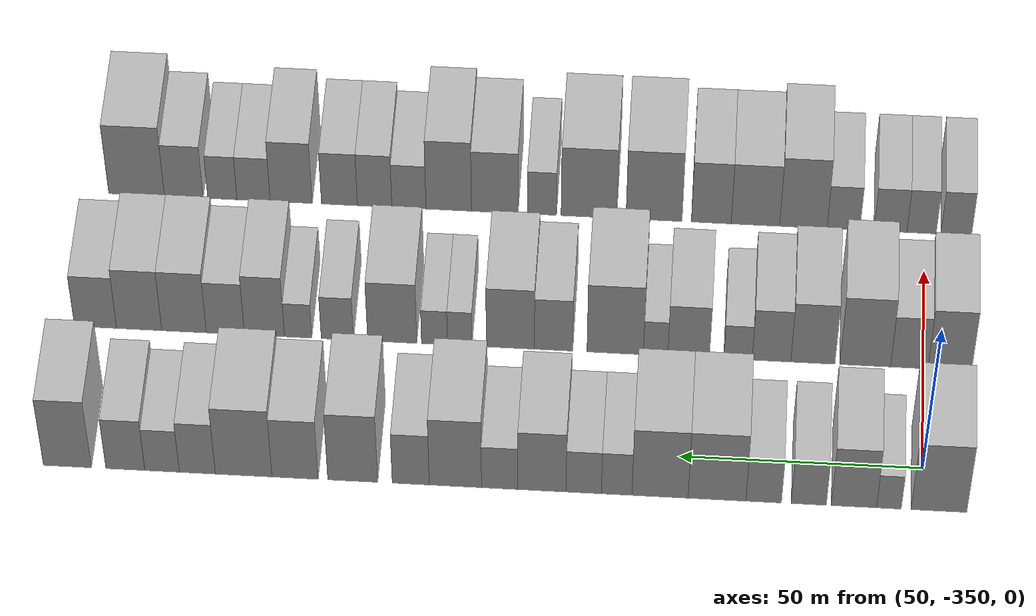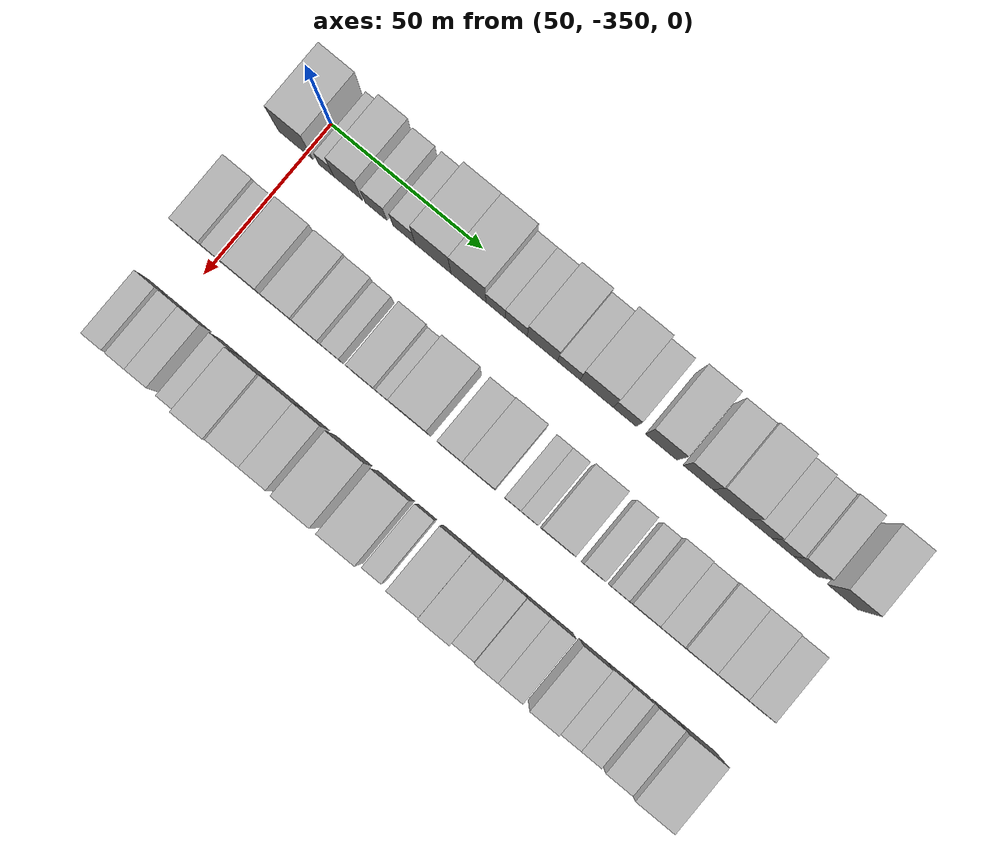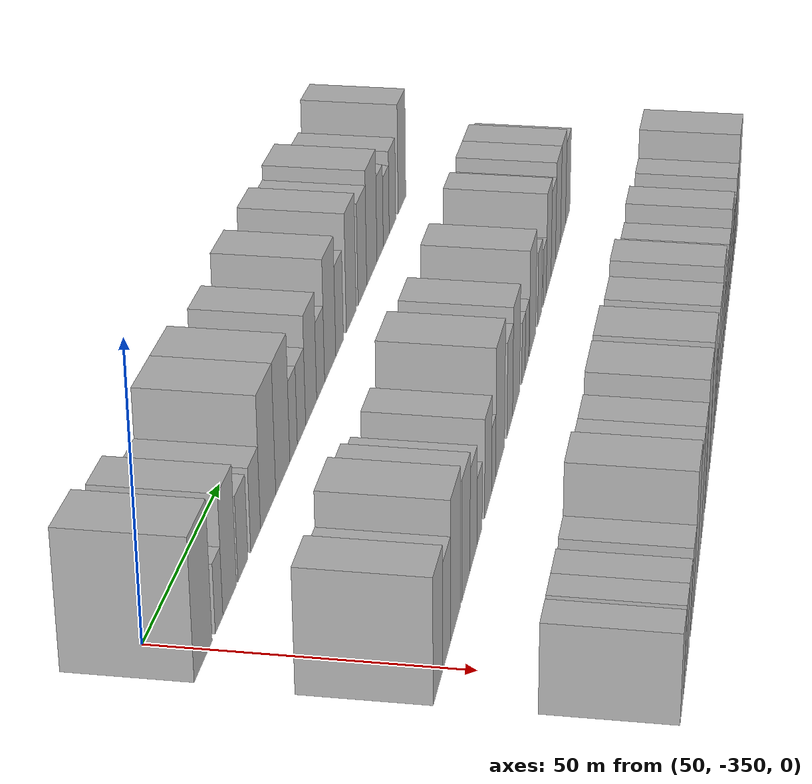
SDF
<sdf version="1.6">
 <world name="default">
  <model name="building_1">
   <static>1</static>
   <pose>50.0000 -353.3251 0 0.000000 0.000000 0.000000</pose>
   <link name="link">
    <pose>0 0 12.00 0 0 0</pose>
    <collision name="collision"><geometry><box><size>20.0000 11.3498 24.0000</size></box></geometry></collision>
    <visual name="visual">
     <cast_shadows>0</cast_shadows>
     <geometry><box><size>20.0000 11.3498 24.0000</size></box></geometry>
     <material>
      <script>
       <uri>model://HANNAS_wall/materials/scripts</uri>
       <uri>model://HANNAS_wall/materials/textures</uri>
       <name>vrc/HANNAS_wall</name>
      </script>
     </material>
    </visual>
   </link>
  </model>
  <model name="building_2">
   <static>1</static>
   <pose>50.0000 -343.1335 0 0.000000 0.000000 0.000000</pose>
   <link name="link">
    <pose>0 0 6.00 0 0 0</pose>
    <collision name="collision"><geometry><box><size>20.0000 5.0335 12.0000</size></box></geometry></collision>
    <visual name="visual">
     <cast_shadows>0</cast_shadows>
     <geometry><box><size>20.0000 5.0335 12.0000</size></box></geometry>
     <material>
      <script>
       <uri>model://HANNAS_wall/materials/scripts</uri>
       <uri>model://HANNAS_wall/materials/textures</uri>
       <name>vrc/HANNAS_wall</name>
      </script>
     </material>
    </visual>
   </link>
  </model>
  <model name="building_3">
   <static>1</static>
   <pose>50.0000 -335.9942 0 0.000000 0.000000 0.000000</pose>
   <link name="link">
    <pose>0 0 10.50 0 0 0</pose>
    <collision name="collision"><geometry><box><size>20.0000 9.2450 21.0000</size></box></geometry></collision>
    <visual name="visual">
     <cast_shadows>0</cast_shadows>
     <geometry><box><size>20.0000 9.2450 21.0000</size></box></geometry>
     <material>
      <script>
       <uri>model://HANNAS_wall/materials/scripts</uri>
       <uri>model://HANNAS_wall/materials/textures</uri>
       <name>vrc/HANNAS_wall</name>
      </script>
     </material>
    </visual>
   </link>
  </model>
  <model name="building_4">
   <static>1</static>
   <pose>50.0000 -326.7886 0 0.000000 0.000000 0.000000</pose>
   <link name="link">
    <pose>0 0 7.50 0 0 0</pose>
    <collision name="collision"><geometry><box><size>20.0000 7.1661 15.0000</size></box></geometry></collision>
    <visual name="visual">
     <cast_shadows>0</cast_shadows>
     <geometry><box><size>20.0000 7.1661 15.0000</size></box></geometry>
     <material>
      <script>
       <uri>model://HANNAS_wall/materials/scripts</uri>
       <uri>model://HANNAS_wall/materials/textures</uri>
       <name>vrc/HANNAS_wall</name>
      </script>
     </material>
    </visual>
   </link>
  </model>
  <model name="building_5">
   <static>1</static>
   <pose>50.0000 -317.5705 0 0.000000 0.000000 0.000000</pose>
   <link name="link">
    <pose>0 0 7.50 0 0 0</pose>
    <collision name="collision"><geometry><box><size>20.0000 7.2703 15.0000</size></box></geometry></collision>
    <visual name="visual">
     <cast_shadows>0</cast_shadows>
     <geometry><box><size>20.0000 7.2703 15.0000</size></box></geometry>
     <material>
      <script>
       <uri>model://HANNAS_wall/materials/scripts</uri>
       <uri>model://HANNAS_wall/materials/textures</uri>
       <name>vrc/HANNAS_wall</name>
      </script>
     </material>
    </visual>
   </link>
  </model>
  <model name="building_6">
   <static>1</static>
   <pose>50.0000 -308.0313 0 0.000000 0.000000 0.000000</pose>
   <link name="link">
    <pose>0 0 12.00 0 0 0</pose>
    <collision name="collision"><geometry><box><size>20.0000 11.8082 24.0000</size></box></geometry></collision>
    <visual name="visual">
     <cast_shadows>0</cast_shadows>
     <geometry><box><size>20.0000 11.8082 24.0000</size></box></geometry>
     <material>
      <script>
       <uri>model://HANNAS_wall/materials/scripts</uri>
       <uri>model://HANNAS_wall/materials/textures</uri>
       <name>vrc/HANNAS_wall</name>
      </script>
     </material>
    </visual>
   </link>
  </model>
  <model name="building_7">
   <static>1</static>
   <pose>50.0000 -296.3901 0 0.000000 0.000000 0.000000</pose>
   <link name="link">
    <pose>0 0 12.00 0 0 0</pose>
    <collision name="collision"><geometry><box><size>20.0000 11.4741 24.0000</size></box></geometry></collision>
    <visual name="visual">
     <cast_shadows>0</cast_shadows>
     <geometry><box><size>20.0000 11.4741 24.0000</size></box></geometry>
     <material>
      <script>
       <uri>model://HANNAS_wall/materials/scripts</uri>
       <uri>model://HANNAS_wall/materials/textures</uri>
       <name>vrc/HANNAS_wall</name>
      </script>
     </material>
    </visual>
   </link>
  </model>
  <model name="building_8">
   <static>1</static>
   <pose>50.0000 -287.5126 0 0.000000 0.000000 0.000000</pose>
   <link name="link">
    <pose>0 0 7.50 0 0 0</pose>
    <collision name="collision"><geometry><box><size>20.0000 6.2810 15.0000</size></box></geometry></collision>
    <visual name="visual">
     <cast_shadows>0</cast_shadows>
     <geometry><box><size>20.0000 6.2810 15.0000</size></box></geometry>
     <material>
      <script>
       <uri>model://HANNAS_wall/materials/scripts</uri>
       <uri>model://HANNAS_wall/materials/textures</uri>
       <name>vrc/HANNAS_wall</name>
      </script>
     </material>
    </visual>
   </link>
  </model>
  <model name="building_9">
   <static>1</static>
   <pose>50.0000 -280.7550 0 0.000000 0.000000 0.000000</pose>
   <link name="link">
    <pose>0 0 7.50 0 0 0</pose>
    <collision name="collision"><geometry><box><size>20.0000 7.2342 15.0000</size></box></geometry></collision>
    <visual name="visual">
     <cast_shadows>0</cast_shadows>
     <geometry><box><size>20.0000 7.2342 15.0000</size></box></geometry>
     <material>
      <script>
       <uri>model://HANNAS_wall/materials/scripts</uri>
       <uri>model://HANNAS_wall/materials/textures</uri>
       <name>vrc/HANNAS_wall</name>
      </script>
     </material>
    </visual>
   </link>
  </model>
  <model name="building_10">
   <static>1</static>
   <pose>50.0000 -272.1799 0 0.000000 0.000000 0.000000</pose>
   <link name="link">
    <pose>0 0 10.50 0 0 0</pose>
    <collision name="collision"><geometry><box><size>20.0000 9.9160 21.0000</size></box></geometry></collision>
    <visual name="visual">
     <cast_shadows>0</cast_shadows>
     <geometry><box><size>20.0000 9.9160 21.0000</size></box></geometry>
     <material>
      <script>
       <uri>model://HANNAS_wall/materials/scripts</uri>
       <uri>model://HANNAS_wall/materials/textures</uri>
       <name>vrc/HANNAS_wall</name>
      </script>
     </material>
    </visual>
   </link>
  </model>
  <model name="building_11">
   <static>1</static>
   <pose>50.0000 -263.5175 0 0.000000 0.000000 0.000000</pose>
   <link name="link">
    <pose>0 0 7.50 0 0 0</pose>
    <collision name="collision"><geometry><box><size>20.0000 7.4087 15.0000</size></box></geometry></collision>
    <visual name="visual">
     <cast_shadows>0</cast_shadows>
     <geometry><box><size>20.0000 7.4087 15.0000</size></box></geometry>
     <material>
      <script>
       <uri>model://HANNAS_wall/materials/scripts</uri>
       <uri>model://HANNAS_wall/materials/textures</uri>
       <name>vrc/HANNAS_wall</name>
      </script>
     </material>
    </visual>
   </link>
  </model>
  <model name="building_12">
   <static>1</static>
   <pose>50.0000 -254.4428 0 0.000000 0.000000 0.000000</pose>
   <link name="link">
    <pose>0 0 12.00 0 0 0</pose>
    <collision name="collision"><geometry><box><size>20.0000 10.7407 24.0000</size></box></geometry></collision>
    <visual name="visual">
     <cast_shadows>0</cast_shadows>
     <geometry><box><size>20.0000 10.7407 24.0000</size></box></geometry>
     <material>
      <script>
       <uri>model://HANNAS_wall/materials/scripts</uri>
       <uri>model://HANNAS_wall/materials/textures</uri>
       <name>vrc/HANNAS_wall</name>
      </script>
     </material>
    </visual>
   </link>
  </model>
  <model name="building_13">
   <static>1</static>
   <pose>50.0000 -245.2816 0 0.000000 0.000000 0.000000</pose>
   <link name="link">
    <pose>0 0 9.00 0 0 0</pose>
    <collision name="collision"><geometry><box><size>20.0000 7.5817 18.0000</size></box></geometry></collision>
    <visual name="visual">
     <cast_shadows>0</cast_shadows>
     <geometry><box><size>20.0000 7.5817 18.0000</size></box></geometry>
     <material>
      <script>
       <uri>model://HANNAS_wall/materials/scripts</uri>
       <uri>model://HANNAS_wall/materials/textures</uri>
       <name>vrc/HANNAS_wall</name>
      </script>
     </material>
    </visual>
   </link>
  </model>
  <model name="building_14">
   <static>1</static>
   <pose>50.0000 -233.3662 0 0.000000 0.000000 0.000000</pose>
   <link name="link">
    <pose>0 0 12.00 0 0 0</pose>
    <collision name="collision"><geometry><box><size>20.0000 10.2491 24.0000</size></box></geometry></collision>
    <visual name="visual">
     <cast_shadows>0</cast_shadows>
     <geometry><box><size>20.0000 10.2491 24.0000</size></box></geometry>
     <material>
      <script>
       <uri>model://HANNAS_wall/materials/scripts</uri>
       <uri>model://HANNAS_wall/materials/textures</uri>
       <name>vrc/HANNAS_wall</name>
      </script>
     </material>
    </visual>
   </link>
  </model>
  <model name="building_15">
   <static>1</static>
   <pose>50.0000 -221.4860 0 0.000000 0.000000 0.000000</pose>
   <link name="link">
    <pose>0 0 10.50 0 0 0</pose>
    <collision name="collision"><geometry><box><size>20.0000 9.5113 21.0000</size></box></geometry></collision>
    <visual name="visual">
     <cast_shadows>0</cast_shadows>
     <geometry><box><size>20.0000 9.5113 21.0000</size></box></geometry>
     <material>
      <script>
       <uri>model://HANNAS_wall/materials/scripts</uri>
       <uri>model://HANNAS_wall/materials/textures</uri>
       <name>vrc/HANNAS_wall</name>
      </script>
     </material>
    </visual>
   </link>
  </model>
  <model name="building_16">
   <static>1</static>
   <pose>50.0000 -210.9035 0 0.000000 0.000000 0.000000</pose>
   <link name="link">
    <pose>0 0 12.00 0 0 0</pose>
    <collision name="collision"><geometry><box><size>20.0000 11.6537 24.0000</size></box></geometry></collision>
    <visual name="visual">
     <cast_shadows>0</cast_shadows>
     <geometry><box><size>20.0000 11.6537 24.0000</size></box></geometry>
     <material>
      <script>
       <uri>model://HANNAS_wall/materials/scripts</uri>
       <uri>model://HANNAS_wall/materials/textures</uri>
       <name>vrc/HANNAS_wall</name>
      </script>
     </material>
    </visual>
   </link>
  </model>
  <model name="building_17">
   <static>1</static>
   <pose>50.0000 -201.3647 0 0.000000 0.000000 0.000000</pose>
   <link name="link">
    <pose>0 0 9.00 0 0 0</pose>
    <collision name="collision"><geometry><box><size>20.0000 7.4239 18.0000</size></box></geometry></collision>
    <visual name="visual">
     <cast_shadows>0</cast_shadows>
     <geometry><box><size>20.0000 7.4239 18.0000</size></box></geometry>
     <material>
      <script>
       <uri>model://HANNAS_wall/materials/scripts</uri>
       <uri>model://HANNAS_wall/materials/textures</uri>
       <name>vrc/HANNAS_wall</name>
      </script>
     </material>
    </visual>
   </link>
  </model>
  <model name="building_18">
   <static>1</static>
   <pose>50.0000 -194.0934 0 0.000000 0.000000 0.000000</pose>
   <link name="link">
    <pose>0 0 7.50 0 0 0</pose>
    <collision name="collision"><geometry><box><size>20.0000 7.1187 15.0000</size></box></geometry></collision>
    <visual name="visual">
     <cast_shadows>0</cast_shadows>
     <geometry><box><size>20.0000 7.1187 15.0000</size></box></geometry>
     <material>
      <script>
       <uri>model://HANNAS_wall/materials/scripts</uri>
       <uri>model://HANNAS_wall/materials/textures</uri>
       <name>vrc/HANNAS_wall</name>
      </script>
     </material>
    </visual>
   </link>
  </model>
  <model name="building_19">
   <static>1</static>
   <pose>50.0000 -186.5192 0 0.000000 0.000000 0.000000</pose>
   <link name="link">
    <pose>0 0 9.00 0 0 0</pose>
    <collision name="collision"><geometry><box><size>20.0000 8.0296 18.0000</size></box></geometry></collision>
    <visual name="visual">
     <cast_shadows>0</cast_shadows>
     <geometry><box><size>20.0000 8.0296 18.0000</size></box></geometry>
     <material>
      <script>
       <uri>model://HANNAS_wall/materials/scripts</uri>
       <uri>model://HANNAS_wall/materials/textures</uri>
       <name>vrc/HANNAS_wall</name>
      </script>
     </material>
    </visual>
   </link>
  </model>
  <model name="building_20">
   <static>1</static>
   <pose>50.0000 -174.5588 0 0.000000 0.000000 0.000000</pose>
   <link name="link">
    <pose>0 0 12.00 0 0 0</pose>
    <collision name="collision"><geometry><box><size>20.0000 9.8912 24.0000</size></box></geometry></collision>
    <visual name="visual">
     <cast_shadows>0</cast_shadows>
     <geometry><box><size>20.0000 9.8912 24.0000</size></box></geometry>
     <material>
      <script>
       <uri>model://HANNAS_wall/materials/scripts</uri>
       <uri>model://HANNAS_wall/materials/textures</uri>
       <name>vrc/HANNAS_wall</name>
      </script>
     </material>
    </visual>
   </link>
  </model>
  <model name="building_83">
   <static>1</static>
   <pose>85.0000 -355.4386 0 0.000000 0.000000 0.000000</pose>
   <link name="link">
    <pose>0 0 10.50 0 0 0</pose>
    <collision name="collision"><geometry><box><size>20.0000 9.1228 21.0000</size></box></geometry></collision>
    <visual name="visual">
     <cast_shadows>0</cast_shadows>
     <geometry><box><size>20.0000 9.1228 21.0000</size></box></geometry>
     <material>
      <script>
       <uri>model://HANNAS_wall/materials/scripts</uri>
       <uri>model://HANNAS_wall/materials/textures</uri>
       <name>vrc/HANNAS_wall</name>
      </script>
     </material>
    </visual>
   </link>
  </model>
  <model name="building_84">
   <static>1</static>
   <pose>85.0000 -346.9880 0 0.000000 0.000000 0.000000</pose>
   <link name="link">
    <pose>0 0 9.00 0 0 0</pose>
    <collision name="collision"><geometry><box><size>20.0000 7.7783 18.0000</size></box></geometry></collision>
    <visual name="visual">
     <cast_shadows>0</cast_shadows>
     <geometry><box><size>20.0000 7.7783 18.0000</size></box></geometry>
     <material>
      <script>
       <uri>model://HANNAS_wall/materials/scripts</uri>
       <uri>model://HANNAS_wall/materials/textures</uri>
       <name>vrc/HANNAS_wall</name>
      </script>
     </material>
    </visual>
   </link>
  </model>
  <model name="building_85">
   <static>1</static>
   <pose>85.0000 -337.7955 0 0.000000 0.000000 0.000000</pose>
   <link name="link">
    <pose>0 0 12.00 0 0 0</pose>
    <collision name="collision"><geometry><box><size>20.0000 10.6069 24.0000</size></box></geometry></collision>
    <visual name="visual">
     <cast_shadows>0</cast_shadows>
     <geometry><box><size>20.0000 10.6069 24.0000</size></box></geometry>
     <material>
      <script>
       <uri>model://HANNAS_wall/materials/scripts</uri>
       <uri>model://HANNAS_wall/materials/textures</uri>
       <name>vrc/HANNAS_wall</name>
      </script>
     </material>
    </visual>
   </link>
  </model>
  <model name="building_86">
   <static>1</static>
   <pose>85.0000 -326.8824 0 0.000000 0.000000 0.000000</pose>
   <link name="link">
    <pose>0 0 10.50 0 0 0</pose>
    <collision name="collision"><geometry><box><size>20.0000 9.2192 21.0000</size></box></geometry></collision>
    <visual name="visual">
     <cast_shadows>0</cast_shadows>
     <geometry><box><size>20.0000 9.2192 21.0000</size></box></geometry>
     <material>
      <script>
       <uri>model://HANNAS_wall/materials/scripts</uri>
       <uri>model://HANNAS_wall/materials/textures</uri>
       <name>vrc/HANNAS_wall</name>
      </script>
     </material>
    </visual>
   </link>
  </model>
  <model name="building_87">
   <static>1</static>
   <pose>85.0000 -318.2316 0 0.000000 0.000000 0.000000</pose>
   <link name="link">
    <pose>0 0 9.00 0 0 0</pose>
    <collision name="collision"><geometry><box><size>20.0000 8.0823 18.0000</size></box></geometry></collision>
    <visual name="visual">
     <cast_shadows>0</cast_shadows>
     <geometry><box><size>20.0000 8.0823 18.0000</size></box></geometry>
     <material>
      <script>
       <uri>model://HANNAS_wall/materials/scripts</uri>
       <uri>model://HANNAS_wall/materials/textures</uri>
       <name>vrc/HANNAS_wall</name>
      </script>
     </material>
    </visual>
   </link>
  </model>
  <model name="building_88">
   <static>1</static>
   <pose>85.0000 -311.2366 0 0.000000 0.000000 0.000000</pose>
   <link name="link">
    <pose>0 0 6.00 0 0 0</pose>
    <collision name="collision"><geometry><box><size>20.0000 5.9078 12.0000</size></box></geometry></collision>
    <visual name="visual">
     <cast_shadows>0</cast_shadows>
     <geometry><box><size>20.0000 5.9078 12.0000</size></box></geometry>
     <material>
      <script>
       <uri>model://HANNAS_wall/materials/scripts</uri>
       <uri>model://HANNAS_wall/materials/textures</uri>
       <name>vrc/HANNAS_wall</name>
      </script>
     </material>
    </visual>
   </link>
  </model>
  <model name="building_89">
   <static>1</static>
   <pose>85.0000 -300.9333 0 0.000000 0.000000 0.000000</pose>
   <link name="link">
    <pose>0 0 9.00 0 0 0</pose>
    <collision name="collision"><geometry><box><size>20.0000 8.6987 18.0000</size></box></geometry></collision>
    <visual name="visual">
     <cast_shadows>0</cast_shadows>
     <geometry><box><size>20.0000 8.6987 18.0000</size></box></geometry>
     <material>
      <script>
       <uri>model://HANNAS_wall/materials/scripts</uri>
       <uri>model://HANNAS_wall/materials/textures</uri>
       <name>vrc/HANNAS_wall</name>
      </script>
     </material>
    </visual>
   </link>
  </model>
  <model name="building_90">
   <static>1</static>
   <pose>85.0000 -294.0232 0 0.000000 0.000000 0.000000</pose>
   <link name="link">
    <pose>0 0 6.00 0 0 0</pose>
    <collision name="collision"><geometry><box><size>20.0000 5.1216 12.0000</size></box></geometry></collision>
    <visual name="visual">
     <cast_shadows>0</cast_shadows>
     <geometry><box><size>20.0000 5.1216 12.0000</size></box></geometry>
     <material>
      <script>
       <uri>model://HANNAS_wall/materials/scripts</uri>
       <uri>model://HANNAS_wall/materials/textures</uri>
       <name>vrc/HANNAS_wall</name>
      </script>
     </material>
    </visual>
   </link>
  </model>
  <model name="building_91">
   <static>1</static>
   <pose>85.0000 -285.5530 0 0.000000 0.000000 0.000000</pose>
   <link name="link">
    <pose>0 0 12.00 0 0 0</pose>
    <collision name="collision"><geometry><box><size>20.0000 11.8188 24.0000</size></box></geometry></collision>
    <visual name="visual">
     <cast_shadows>0</cast_shadows>
     <geometry><box><size>20.0000 11.8188 24.0000</size></box></geometry>
     <material>
      <script>
       <uri>model://HANNAS_wall/materials/scripts</uri>
       <uri>model://HANNAS_wall/materials/textures</uri>
       <name>vrc/HANNAS_wall</name>
      </script>
     </material>
    </visual>
   </link>
  </model>
  <model name="building_92">
   <static>1</static>
   <pose>85.0000 -272.6303 0 0.000000 0.000000 0.000000</pose>
   <link name="link">
    <pose>0 0 9.00 0 0 0</pose>
    <collision name="collision"><geometry><box><size>20.0000 8.0266 18.0000</size></box></geometry></collision>
    <visual name="visual">
     <cast_shadows>0</cast_shadows>
     <geometry><box><size>20.0000 8.0266 18.0000</size></box></geometry>
     <material>
      <script>
       <uri>model://HANNAS_wall/materials/scripts</uri>
       <uri>model://HANNAS_wall/materials/textures</uri>
       <name>vrc/HANNAS_wall</name>
      </script>
     </material>
    </visual>
   </link>
  </model>
  <model name="building_93">
   <static>1</static>
   <pose>85.0000 -263.5773 0 0.000000 0.000000 0.000000</pose>
   <link name="link">
    <pose>0 0 10.50 0 0 0</pose>
    <collision name="collision"><geometry><box><size>20.0000 10.0795 21.0000</size></box></geometry></collision>
    <visual name="visual">
     <cast_shadows>0</cast_shadows>
     <geometry><box><size>20.0000 10.0795 21.0000</size></box></geometry>
     <material>
      <script>
       <uri>model://HANNAS_wall/materials/scripts</uri>
       <uri>model://HANNAS_wall/materials/textures</uri>
       <name>vrc/HANNAS_wall</name>
      </script>
     </material>
    </visual>
   </link>
  </model>
  <model name="building_94">
   <static>1</static>
   <pose>85.0000 -252.9424 0 0.000000 0.000000 0.000000</pose>
   <link name="link">
    <pose>0 0 6.00 0 0 0</pose>
    <collision name="collision"><geometry><box><size>20.0000 5.1903 12.0000</size></box></geometry></collision>
    <visual name="visual">
     <cast_shadows>0</cast_shadows>
     <geometry><box><size>20.0000 5.1903 12.0000</size></box></geometry>
     <material>
      <script>
       <uri>model://HANNAS_wall/materials/scripts</uri>
       <uri>model://HANNAS_wall/materials/textures</uri>
       <name>vrc/HANNAS_wall</name>
      </script>
     </material>
    </visual>
   </link>
  </model>
  <model name="building_95">
   <static>1</static>
   <pose>85.0000 -247.6341 0 0.000000 0.000000 0.000000</pose>
   <link name="link">
    <pose>0 0 6.00 0 0 0</pose>
    <collision name="collision"><geometry><box><size>20.0000 5.4264 12.0000</size></box></geometry></collision>
    <visual name="visual">
     <cast_shadows>0</cast_shadows>
     <geometry><box><size>20.0000 5.4264 12.0000</size></box></geometry>
     <material>
      <script>
       <uri>model://HANNAS_wall/materials/scripts</uri>
       <uri>model://HANNAS_wall/materials/textures</uri>
       <name>vrc/HANNAS_wall</name>
      </script>
     </material>
    </visual>
   </link>
  </model>
  <model name="building_96">
   <static>1</static>
   <pose>85.0000 -238.7633 0 0.000000 0.000000 0.000000</pose>
   <link name="link">
    <pose>0 0 10.50 0 0 0</pose>
    <collision name="collision"><geometry><box><size>20.0000 10.3152 21.0000</size></box></geometry></collision>
    <visual name="visual">
     <cast_shadows>0</cast_shadows>
     <geometry><box><size>20.0000 10.3152 21.0000</size></box></geometry>
     <material>
      <script>
       <uri>model://HANNAS_wall/materials/scripts</uri>
       <uri>model://HANNAS_wall/materials/textures</uri>
       <name>vrc/HANNAS_wall</name>
      </script>
     </material>
    </visual>
   </link>
  </model>
  <model name="building_97">
   <static>1</static>
   <pose>85.0000 -227.2206 0 0.000000 0.000000 0.000000</pose>
   <link name="link">
    <pose>0 0 7.50 0 0 0</pose>
    <collision name="collision"><geometry><box><size>20.0000 6.7701 15.0000</size></box></geometry></collision>
    <visual name="visual">
     <cast_shadows>0</cast_shadows>
     <geometry><box><size>20.0000 6.7701 15.0000</size></box></geometry>
     <material>
      <script>
       <uri>model://HANNAS_wall/materials/scripts</uri>
       <uri>model://HANNAS_wall/materials/textures</uri>
       <name>vrc/HANNAS_wall</name>
      </script>
     </material>
    </visual>
   </link>
  </model>
  <model name="building_98">
   <static>1</static>
   <pose>85.0000 -218.9671 0 0.000000 0.000000 0.000000</pose>
   <link name="link">
    <pose>0 0 6.00 0 0 0</pose>
    <collision name="collision"><geometry><box><size>20.0000 5.7369 12.0000</size></box></geometry></collision>
    <visual name="visual">
     <cast_shadows>0</cast_shadows>
     <geometry><box><size>20.0000 5.7369 12.0000</size></box></geometry>
     <material>
      <script>
       <uri>model://HANNAS_wall/materials/scripts</uri>
       <uri>model://HANNAS_wall/materials/textures</uri>
       <name>vrc/HANNAS_wall</name>
      </script>
     </material>
    </visual>
   </link>
  </model>
  <model name="building_99">
   <static>1</static>
   <pose>85.0000 -211.8743 0 0.000000 0.000000 0.000000</pose>
   <link name="link">
    <pose>0 0 10.50 0 0 0</pose>
    <collision name="collision"><geometry><box><size>20.0000 8.4487 21.0000</size></box></geometry></collision>
    <visual name="visual">
     <cast_shadows>0</cast_shadows>
     <geometry><box><size>20.0000 8.4487 21.0000</size></box></geometry>
     <material>
      <script>
       <uri>model://HANNAS_wall/materials/scripts</uri>
       <uri>model://HANNAS_wall/materials/textures</uri>
       <name>vrc/HANNAS_wall</name>
      </script>
     </material>
    </visual>
   </link>
  </model>
  <model name="building_100">
   <static>1</static>
   <pose>85.0000 -203.6304 0 0.000000 0.000000 0.000000</pose>
   <link name="link">
    <pose>0 0 9.00 0 0 0</pose>
    <collision name="collision"><geometry><box><size>20.0000 8.0393 18.0000</size></box></geometry></collision>
    <visual name="visual">
     <cast_shadows>0</cast_shadows>
     <geometry><box><size>20.0000 8.0393 18.0000</size></box></geometry>
     <material>
      <script>
       <uri>model://HANNAS_wall/materials/scripts</uri>
       <uri>model://HANNAS_wall/materials/textures</uri>
       <name>vrc/HANNAS_wall</name>
      </script>
     </material>
    </visual>
   </link>
  </model>
  <model name="building_101">
   <static>1</static>
   <pose>85.0000 -194.9120 0 0.000000 0.000000 0.000000</pose>
   <link name="link">
    <pose>0 0 10.50 0 0 0</pose>
    <collision name="collision"><geometry><box><size>20.0000 9.3975 21.0000</size></box></geometry></collision>
    <visual name="visual">
     <cast_shadows>0</cast_shadows>
     <geometry><box><size>20.0000 9.3975 21.0000</size></box></geometry>
     <material>
      <script>
       <uri>model://HANNAS_wall/materials/scripts</uri>
       <uri>model://HANNAS_wall/materials/textures</uri>
       <name>vrc/HANNAS_wall</name>
      </script>
     </material>
    </visual>
   </link>
  </model>
  <model name="building_102">
   <static>1</static>
   <pose>85.0000 -185.4488 0 0.000000 0.000000 0.000000</pose>
   <link name="link">
    <pose>0 0 10.50 0 0 0</pose>
    <collision name="collision"><geometry><box><size>20.0000 9.5290 21.0000</size></box></geometry></collision>
    <visual name="visual">
     <cast_shadows>0</cast_shadows>
     <geometry><box><size>20.0000 9.5290 21.0000</size></box></geometry>
     <material>
      <script>
       <uri>model://HANNAS_wall/materials/scripts</uri>
       <uri>model://HANNAS_wall/materials/textures</uri>
       <name>vrc/HANNAS_wall</name>
      </script>
     </material>
    </visual>
   </link>
  </model>
  <model name="building_103">
   <static>1</static>
   <pose>85.0000 -176.2428 0 0.000000 0.000000 0.000000</pose>
   <link name="link">
    <pose>0 0 9.00 0 0 0</pose>
    <collision name="collision"><geometry><box><size>20.0000 8.8830 18.0000</size></box></geometry></collision>
    <visual name="visual">
     <cast_shadows>0</cast_shadows>
     <geometry><box><size>20.0000 8.8830 18.0000</size></box></geometry>
     <material>
      <script>
       <uri>model://HANNAS_wall/materials/scripts</uri>
       <uri>model://HANNAS_wall/materials/textures</uri>
       <name>vrc/HANNAS_wall</name>
      </script>
     </material>
    </visual>
   </link>
  </model>
  <model name="building_168">
   <static>1</static>
   <pose>120.0000 -356.7321 0 0.000000 0.000000 0.000000</pose>
   <link name="link">
    <pose>0 0 7.50 0 0 0</pose>
    <collision name="collision"><geometry><box><size>20.0000 6.5358 15.0000</size></box></geometry></collision>
    <visual name="visual">
     <cast_shadows>0</cast_shadows>
     <geometry><box><size>20.0000 6.5358 15.0000</size></box></geometry>
     <material>
      <script>
       <uri>model://HANNAS_wall/materials/scripts</uri>
       <uri>model://HANNAS_wall/materials/textures</uri>
       <name>vrc/HANNAS_wall</name>
      </script>
     </material>
    </visual>
   </link>
  </model>
  <model name="building_169">
   <static>1</static>
   <pose>120.0000 -349.3429 0 0.000000 0.000000 0.000000</pose>
   <link name="link">
    <pose>0 0 7.50 0 0 0</pose>
    <collision name="collision"><geometry><box><size>20.0000 6.2425 15.0000</size></box></geometry></collision>
    <visual name="visual">
     <cast_shadows>0</cast_shadows>
     <geometry><box><size>20.0000 6.2425 15.0000</size></box></geometry>
     <material>
      <script>
       <uri>model://HANNAS_wall/materials/scripts</uri>
       <uri>model://HANNAS_wall/materials/textures</uri>
       <name>vrc/HANNAS_wall</name>
      </script>
     </material>
    </visual>
   </link>
  </model>
  <model name="building_170">
   <static>1</static>
   <pose>120.0000 -342.7122 0 0.000000 0.000000 0.000000</pose>
   <link name="link">
    <pose>0 0 7.50 0 0 0</pose>
    <collision name="collision"><geometry><box><size>20.0000 7.0189 15.0000</size></box></geometry></collision>
    <visual name="visual">
     <cast_shadows>0</cast_shadows>
     <geometry><box><size>20.0000 7.0189 15.0000</size></box></geometry>
     <material>
      <script>
       <uri>model://HANNAS_wall/materials/scripts</uri>
       <uri>model://HANNAS_wall/materials/textures</uri>
       <name>vrc/HANNAS_wall</name>
      </script>
     </material>
    </visual>
   </link>
  </model>
  <model name="building_171">
   <static>1</static>
   <pose>120.0000 -332.6959 0 0.000000 0.000000 0.000000</pose>
   <link name="link">
    <pose>0 0 7.50 0 0 0</pose>
    <collision name="collision"><geometry><box><size>20.0000 7.0138 15.0000</size></box></geometry></collision>
    <visual name="visual">
     <cast_shadows>0</cast_shadows>
     <geometry><box><size>20.0000 7.0138 15.0000</size></box></geometry>
     <material>
      <script>
       <uri>model://HANNAS_wall/materials/scripts</uri>
       <uri>model://HANNAS_wall/materials/textures</uri>
       <name>vrc/HANNAS_wall</name>
      </script>
     </material>
    </visual>
   </link>
  </model>
  <model name="building_172">
   <static>1</static>
   <pose>120.0000 -324.1230 0 0.000000 0.000000 0.000000</pose>
   <link name="link">
    <pose>0 0 12.00 0 0 0</pose>
    <collision name="collision"><geometry><box><size>20.0000 10.1321 24.0000</size></box></geometry></collision>
    <visual name="visual">
     <cast_shadows>0</cast_shadows>
     <geometry><box><size>20.0000 10.1321 24.0000</size></box></geometry>
     <material>
      <script>
       <uri>model://HANNAS_wall/materials/scripts</uri>
       <uri>model://HANNAS_wall/materials/textures</uri>
       <name>vrc/HANNAS_wall</name>
      </script>
     </material>
    </visual>
   </link>
  </model>
  <model name="building_173">
   <static>1</static>
   <pose>120.0000 -313.8687 0 0.000000 0.000000 0.000000</pose>
   <link name="link">
    <pose>0 0 10.50 0 0 0</pose>
    <collision name="collision"><geometry><box><size>20.0000 10.3764 21.0000</size></box></geometry></collision>
    <visual name="visual">
     <cast_shadows>0</cast_shadows>
     <geometry><box><size>20.0000 10.3764 21.0000</size></box></geometry>
     <material>
      <script>
       <uri>model://HANNAS_wall/materials/scripts</uri>
       <uri>model://HANNAS_wall/materials/textures</uri>
       <name>vrc/HANNAS_wall</name>
      </script>
     </material>
    </visual>
   </link>
  </model>
  <model name="building_174">
   <static>1</static>
   <pose>120.0000 -304.4387 0 0.000000 0.000000 0.000000</pose>
   <link name="link">
    <pose>0 0 10.50 0 0 0</pose>
    <collision name="collision"><geometry><box><size>20.0000 8.4835 21.0000</size></box></geometry></collision>
    <visual name="visual">
     <cast_shadows>0</cast_shadows>
     <geometry><box><size>20.0000 8.4835 21.0000</size></box></geometry>
     <material>
      <script>
       <uri>model://HANNAS_wall/materials/scripts</uri>
       <uri>model://HANNAS_wall/materials/textures</uri>
       <name>vrc/HANNAS_wall</name>
      </script>
     </material>
    </visual>
   </link>
  </model>
  <model name="building_175">
   <static>1</static>
   <pose>120.0000 -292.2008 0 0.000000 0.000000 0.000000</pose>
   <link name="link">
    <pose>0 0 12.00 0 0 0</pose>
    <collision name="collision"><geometry><box><size>20.0000 11.9922 24.0000</size></box></geometry></collision>
    <visual name="visual">
     <cast_shadows>0</cast_shadows>
     <geometry><box><size>20.0000 11.9922 24.0000</size></box></geometry>
     <material>
      <script>
       <uri>model://HANNAS_wall/materials/scripts</uri>
       <uri>model://HANNAS_wall/materials/textures</uri>
       <name>vrc/HANNAS_wall</name>
      </script>
     </material>
    </visual>
   </link>
  </model>
  <model name="building_176">
   <static>1</static>
   <pose>120.0000 -278.2525 0 0.000000 0.000000 0.000000</pose>
   <link name="link">
    <pose>0 0 12.00 0 0 0</pose>
    <collision name="collision"><geometry><box><size>20.0000 11.9045 24.0000</size></box></geometry></collision>
    <visual name="visual">
     <cast_shadows>0</cast_shadows>
     <geometry><box><size>20.0000 11.9045 24.0000</size></box></geometry>
     <material>
      <script>
       <uri>model://HANNAS_wall/materials/scripts</uri>
       <uri>model://HANNAS_wall/materials/textures</uri>
       <name>vrc/HANNAS_wall</name>
      </script>
     </material>
    </visual>
   </link>
  </model>
  <model name="building_177">
   <static>1</static>
   <pose>120.0000 -268.1794 0 0.000000 0.000000 0.000000</pose>
   <link name="link">
    <pose>0 0 7.50 0 0 0</pose>
    <collision name="collision"><geometry><box><size>20.0000 6.2416 15.0000</size></box></geometry></collision>
    <visual name="visual">
     <cast_shadows>0</cast_shadows>
     <geometry><box><size>20.0000 6.2416 15.0000</size></box></geometry>
     <material>
      <script>
       <uri>model://HANNAS_wall/materials/scripts</uri>
       <uri>model://HANNAS_wall/materials/textures</uri>
       <name>vrc/HANNAS_wall</name>
      </script>
     </material>
    </visual>
   </link>
  </model>
  <model name="building_178">
   <static>1</static>
   <pose>120.0000 -258.0563 0 0.000000 0.000000 0.000000</pose>
   <link name="link">
    <pose>0 0 10.50 0 0 0</pose>
    <collision name="collision"><geometry><box><size>20.0000 10.0045 21.0000</size></box></geometry></collision>
    <visual name="visual">
     <cast_shadows>0</cast_shadows>
     <geometry><box><size>20.0000 10.0045 21.0000</size></box></geometry>
     <material>
      <script>
       <uri>model://HANNAS_wall/materials/scripts</uri>
       <uri>model://HANNAS_wall/materials/textures</uri>
       <name>vrc/HANNAS_wall</name>
      </script>
     </material>
    </visual>
   </link>
  </model>
  <model name="building_179">
   <static>1</static>
   <pose>120.0000 -248.1759 0 0.000000 0.000000 0.000000</pose>
   <link name="link">
    <pose>0 0 12.00 0 0 0</pose>
    <collision name="collision"><geometry><box><size>20.0000 9.7562 24.0000</size></box></geometry></collision>
    <visual name="visual">
     <cast_shadows>0</cast_shadows>
     <geometry><box><size>20.0000 9.7562 24.0000</size></box></geometry>
     <material>
      <script>
       <uri>model://HANNAS_wall/materials/scripts</uri>
       <uri>model://HANNAS_wall/materials/textures</uri>
       <name>vrc/HANNAS_wall</name>
      </script>
     </material>
    </visual>
   </link>
  </model>
  <model name="building_180">
   <static>1</static>
   <pose>120.0000 -239.6266 0 0.000000 0.000000 0.000000</pose>
   <link name="link">
    <pose>0 0 7.50 0 0 0</pose>
    <collision name="collision"><geometry><box><size>20.0000 7.3425 15.0000</size></box></geometry></collision>
    <visual name="visual">
     <cast_shadows>0</cast_shadows>
     <geometry><box><size>20.0000 7.3425 15.0000</size></box></geometry>
     <material>
      <script>
       <uri>model://HANNAS_wall/materials/scripts</uri>
       <uri>model://HANNAS_wall/materials/textures</uri>
       <name>vrc/HANNAS_wall</name>
      </script>
     </material>
    </visual>
   </link>
  </model>
  <model name="building_181">
   <static>1</static>
   <pose>120.0000 -232.2517 0 0.000000 0.000000 0.000000</pose>
   <link name="link">
    <pose>0 0 9.00 0 0 0</pose>
    <collision name="collision"><geometry><box><size>20.0000 7.4072 18.0000</size></box></geometry></collision>
    <visual name="visual">
     <cast_shadows>0</cast_shadows>
     <geometry><box><size>20.0000 7.4072 18.0000</size></box></geometry>
     <material>
      <script>
       <uri>model://HANNAS_wall/materials/scripts</uri>
       <uri>model://HANNAS_wall/materials/textures</uri>
       <name>vrc/HANNAS_wall</name>
      </script>
     </material>
    </visual>
   </link>
  </model>
  <model name="building_182">
   <static>1</static>
   <pose>120.0000 -224.6907 0 0.000000 0.000000 0.000000</pose>
   <link name="link">
    <pose>0 0 9.00 0 0 0</pose>
    <collision name="collision"><geometry><box><size>20.0000 7.7148 18.0000</size></box></geometry></collision>
    <visual name="visual">
     <cast_shadows>0</cast_shadows>
     <geometry><box><size>20.0000 7.7148 18.0000</size></box></geometry>
     <material>
      <script>
       <uri>model://HANNAS_wall/materials/scripts</uri>
       <uri>model://HANNAS_wall/materials/textures</uri>
       <name>vrc/HANNAS_wall</name>
      </script>
     </material>
    </visual>
   </link>
  </model>
  <model name="building_183">
   <static>1</static>
   <pose>120.0000 -214.3039 0 0.000000 0.000000 0.000000</pose>
   <link name="link">
    <pose>0 0 10.50 0 0 0</pose>
    <collision name="collision"><geometry><box><size>20.0000 9.0586 21.0000</size></box></geometry></collision>
    <visual name="visual">
     <cast_shadows>0</cast_shadows>
     <geometry><box><size>20.0000 9.0586 21.0000</size></box></geometry>
     <material>
      <script>
       <uri>model://HANNAS_wall/materials/scripts</uri>
       <uri>model://HANNAS_wall/materials/textures</uri>
       <name>vrc/HANNAS_wall</name>
      </script>
     </material>
    </visual>
   </link>
  </model>
  <model name="building_184">
   <static>1</static>
   <pose>120.0000 -206.2015 0 0.000000 0.000000 0.000000</pose>
   <link name="link">
    <pose>0 0 7.50 0 0 0</pose>
    <collision name="collision"><geometry><box><size>20.0000 7.1463 15.0000</size></box></geometry></collision>
    <visual name="visual">
     <cast_shadows>0</cast_shadows>
     <geometry><box><size>20.0000 7.1463 15.0000</size></box></geometry>
     <material>
      <script>
       <uri>model://HANNAS_wall/materials/scripts</uri>
       <uri>model://HANNAS_wall/materials/textures</uri>
       <name>vrc/HANNAS_wall</name>
      </script>
     </material>
    </visual>
   </link>
  </model>
  <model name="building_185">
   <static>1</static>
   <pose>120.0000 -199.4764 0 0.000000 0.000000 0.000000</pose>
   <link name="link">
    <pose>0 0 7.50 0 0 0</pose>
    <collision name="collision"><geometry><box><size>20.0000 6.3039 15.0000</size></box></geometry></collision>
    <visual name="visual">
     <cast_shadows>0</cast_shadows>
     <geometry><box><size>20.0000 6.3039 15.0000</size></box></geometry>
     <material>
      <script>
       <uri>model://HANNAS_wall/materials/scripts</uri>
       <uri>model://HANNAS_wall/materials/textures</uri>
       <name>vrc/HANNAS_wall</name>
      </script>
     </material>
    </visual>
   </link>
  </model>
  <model name="building_186">
   <static>1</static>
   <pose>120.0000 -191.1442 0 0.000000 0.000000 0.000000</pose>
   <link name="link">
    <pose>0 0 9.00 0 0 0</pose>
    <collision name="collision"><geometry><box><size>20.0000 8.3605 18.0000</size></box></geometry></collision>
    <visual name="visual">
     <cast_shadows>0</cast_shadows>
     <geometry><box><size>20.0000 8.3605 18.0000</size></box></geometry>
     <material>
      <script>
       <uri>model://HANNAS_wall/materials/scripts</uri>
       <uri>model://HANNAS_wall/materials/textures</uri>
       <name>vrc/HANNAS_wall</name>
      </script>
     </material>
    </visual>
   </link>
  </model>
  <model name="building_187">
   <static>1</static>
   <pose>120.0000 -180.9666 0 0.000000 0.000000 0.000000</pose>
   <link name="link">
    <pose>0 0 12.00 0 0 0</pose>
    <collision name="collision"><geometry><box><size>20.0000 11.9945 24.0000</size></box></geometry></collision>
    <visual name="visual">
     <cast_shadows>0</cast_shadows>
     <geometry><box><size>20.0000 11.9945 24.0000</size></box></geometry>
     <material>
      <script>
       <uri>model://HANNAS_wall/materials/scripts</uri>
       <uri>model://HANNAS_wall/materials/textures</uri>
       <name>vrc/HANNAS_wall</name>
      </script>
     </material>
    </visual>
   </link>
  </model>
 </world>
</sdf>
